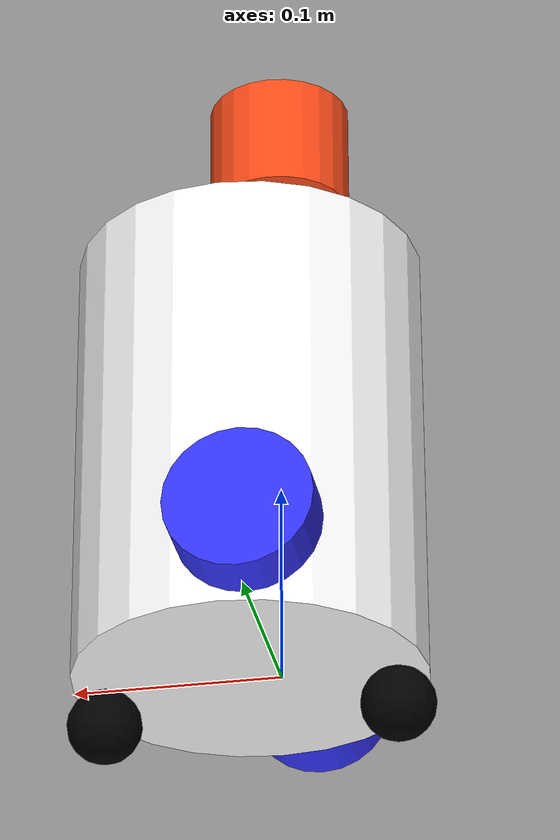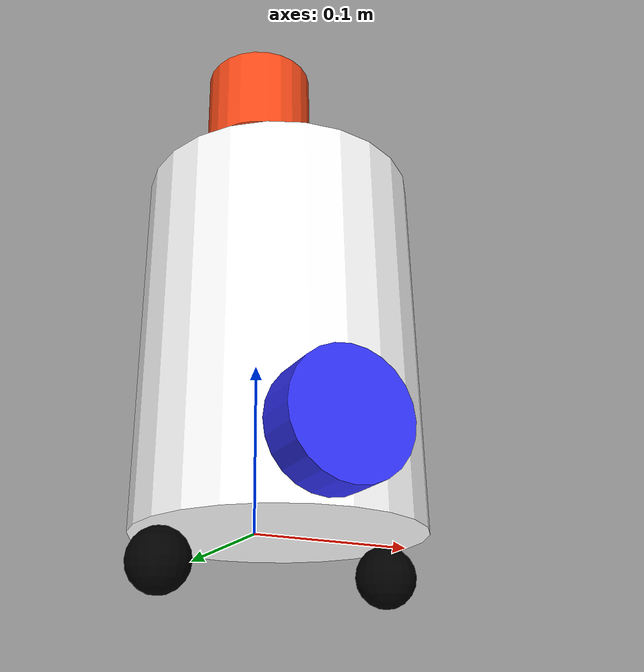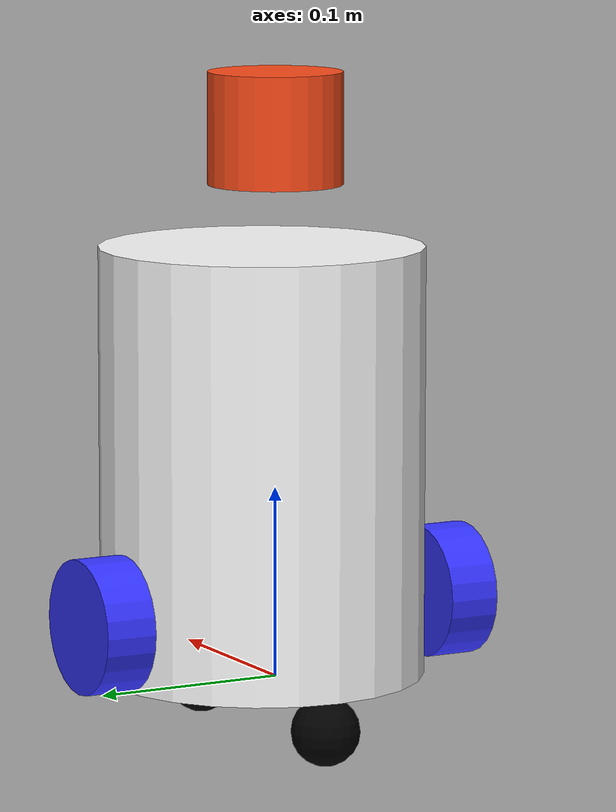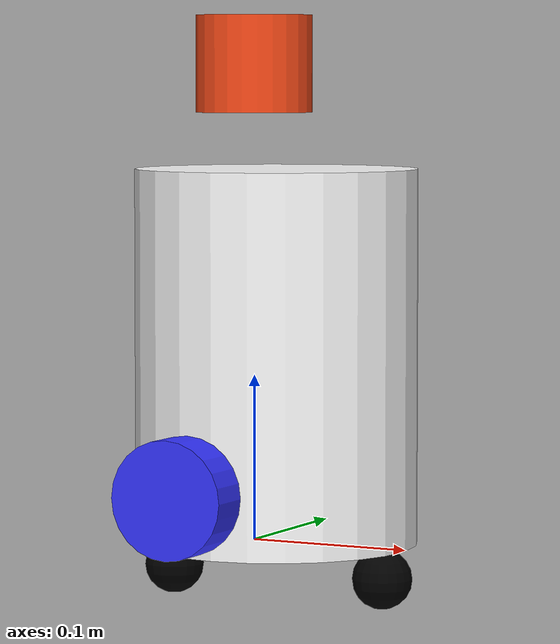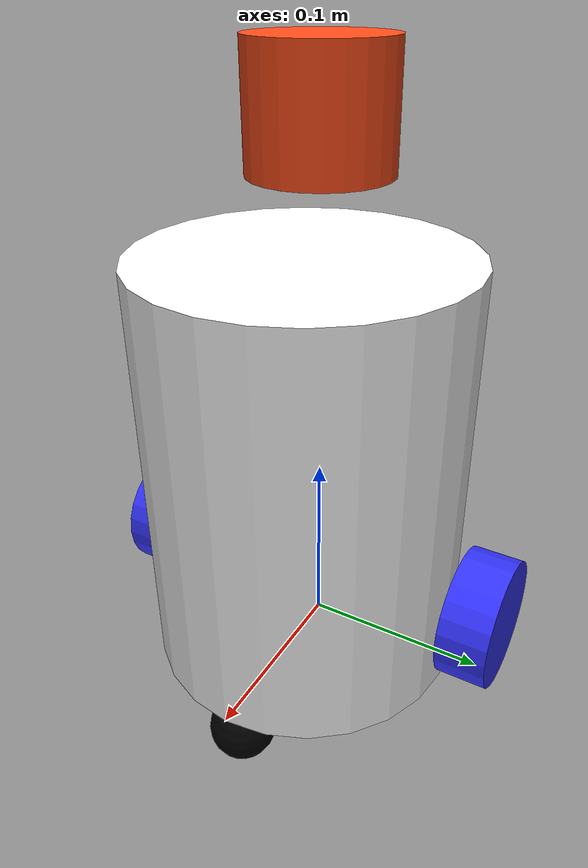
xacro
<?xml version="1.0"?>
<robot xmlns:xacro="http://www.ros.org/wiki/xacro" name="robot_slam">
    <xacro:arg name="use_ros2_control" default="true"/>
    <xacro:arg name="sim_mode" default="false"/>

    <xacro:include filename="model_main.xacro"/>

    <!-- Include ros2_control configuration -->
    <xacro:include filename="ros2_control.xacro"/>
    <xacro:ros2_control_robot use_ros2_control="$(arg use_ros2_control)" sim_mode="$(arg sim_mode)"/>
</robot>

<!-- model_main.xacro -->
<robot name="RealRobot" xmlns:xacro="http://www.ros.org/wiki/xacro" >

    <xacro:include filename="inertial_macros.xacro"/>

    <material name="white">
        <color rgba="1 1 1 1" />
    </material>

    <material name="orange">
        <color rgba="1 0.3 0.1 1"/>
    </material>

    <material name="blue">
        <color rgba="0.2 0.2 1 1"/>
    </material>

    <material name="black">
        <color rgba="0 0 0 1"/>
    </material>

    <link name="base_link">
        <!-- Removed visual and collision boxes -->
        <xacro:inertial_box mass="0.5" x="0.001" y="0.001" z="0.001">
            <origin xyz="0 0 0" rpy="0 0 0"/>
        </xacro:inertial_box>
    </link>

    <joint name="base_footprint_joint" type="fixed">
        <parent link="base_footprint"/>
        <child link="base_link"/>
        <origin xyz="0 0 0.037" rpy="0 0 0"/>
    </joint>

    <link name="base_footprint">
    </link>

    <joint name="container_joint" type="fixed">
        <parent link="base_link"/>
        <child link="container"/>
        <origin xyz="0 0 0" rpy="0 0 0"/>
    </joint>

    <link name="container">
        <visual>
            <origin xyz="0.015 0 0.075"/>
            <geometry>
                <cylinder radius="0.085" length="0.225"/>
            </geometry>
            <material name="white"/>
        </visual>
        <collision>
            <origin xyz="0.15 0 0.075"/>
            <geometry>
                <cylinder radius="0.085" length="0.225"/>
            </geometry>
        </collision>
        <xacro:inertial_box mass="0.5" x="0.3" y="0.3" z="0.15">
            <origin xyz="0.15 0 0.075" rpy="0 0 0"/>
        </xacro:inertial_box>
    </link>

    <joint name="lidar_joint" type="fixed">
        <parent link="base_link"/>
        <child link="lidar"/>
        <origin xyz="0 0 0.25" rpy="0 0 0"/>
    </joint>
    <link name="lidar">
        <visual>
            <geometry>
                <cylinder radius="0.035" length="0.058"/>
            </geometry>
            <material name="orange"/>
        </visual>
        <collision>
            <geometry>
                <cylinder radius="0.035" length="0.058"/>
            </geometry>
        </collision>
        <inertial>
            <mass value="0.2"/>
            <origin xyz="0 0 0.225" />
            <inertia ixx="0.01" ixy="0.0" ixz="0.0" iyy="0.01" iyz="0.0" izz="0.01"/>
        </inertial>
    </link>
    <!-- LEFT WHEEL LINK -->

    <joint name="left_wheel_joint" type="continuous">
        <parent link="base_link"/>
        <child link="left_wheel"/>
        <origin xyz="0 -0.1 0" rpy="${pi/2} 0 0" />
        <axis xyz="0 0 -1"/>
    </joint>

    <link name="left_wheel">
        <visual>
            <geometry>
                <cylinder radius="0.035" length="0.027"/>
            </geometry>
            <material name="blue"/>
        </visual>
        <collision>
            <geometry>
                <cylinder radius="0.035" length="0.027"/>
            </geometry>
        </collision>
        <xacro:inertial_cylinder mass="0.01" length="0.027" radius="0.035">
            <origin xyz="0 0 0" rpy="0 0 0"/>
        </xacro:inertial_cylinder>
    </link>

    <!-- RIGHT WHEEL LINK -->

    <joint name="right_wheel_joint" type="continuous">
        <parent link="base_link"/>
        <child link="right_wheel"/>
        <origin xyz="0 0.1 0" rpy="-${pi/2} 0 0" />
        <axis xyz="0 0 1"/>
    </joint>

    <link name="right_wheel">
        <visual>
            <geometry>
                <cylinder radius="0.035" length="0.027"/>
            </geometry>
            <material name="blue"/>
        </visual>
        <collision>
            <geometry>
                <cylinder radius="0.037" length="0.027"/>
            </geometry>
        </collision>
        <xacro:inertial_cylinder mass="0.1" length="0.027" radius="0.035">
            <origin xyz="0 0 0" rpy="0 0 0"/>
        </xacro:inertial_cylinder>
    </link>

    <!-- Support wheels LINKS -->

    <joint name="support_wheels_joint" type="fixed">
        <parent link="container"/>
        <child link="support_wheels"/>
        <origin xyz="0.085 0 -0.055"/>
    </joint>

    <link name="support_wheels">
        <visual>
            <geometry>
                <sphere radius="0.018"/>
            </geometry>
            <material name="black"/>
        </visual>
        <collision>
            <geometry>
                <sphere radius="0.018"/>
            </geometry>
        </collision>
        <xacro:inertial_sphere mass="0.1" radius="0.018">
            <origin xyz="0 0 0" rpy="0 0 0"/>
        </xacro:inertial_sphere>
    </link>

    <joint name="support_wheels_joint_back" type="fixed">
        <parent link="container"/>
        <child link="support_wheels_back"/>
        <origin xyz="-0.055 0 -0.055"/>
    </joint>

    <link name="support_wheels_back">
        <visual>
            <geometry>
                <sphere radius="0.018"/>
            </geometry>
            <material name="black"/>
        </visual>
        <collision>
            <geometry>
                <sphere radius="0.018"/>
            </geometry>
        </collision>
        <xacro:inertial_sphere mass="0.1" radius="0.018">
            <origin xyz="0 0 0" rpy="0 0 0"/>
        </xacro:inertial_sphere>
    </link>

</robot>
